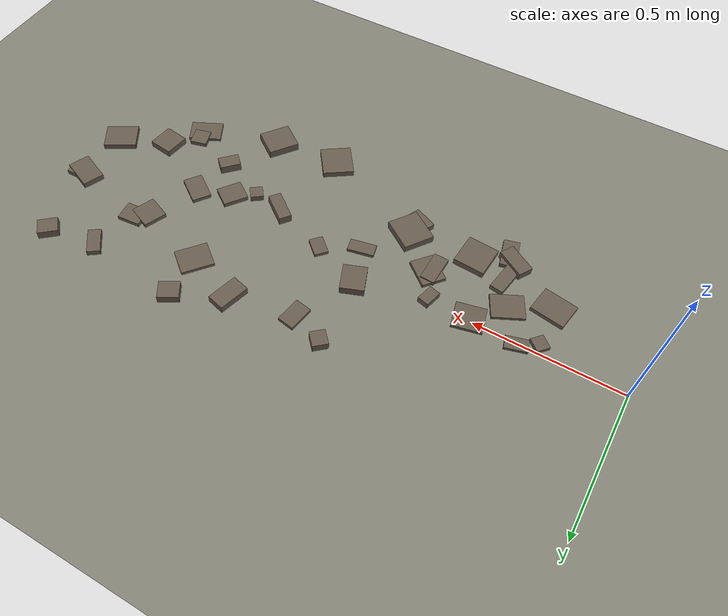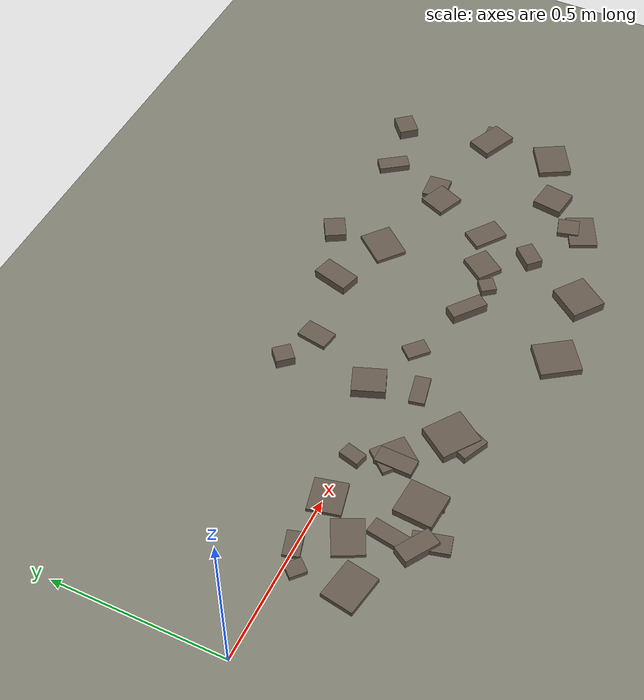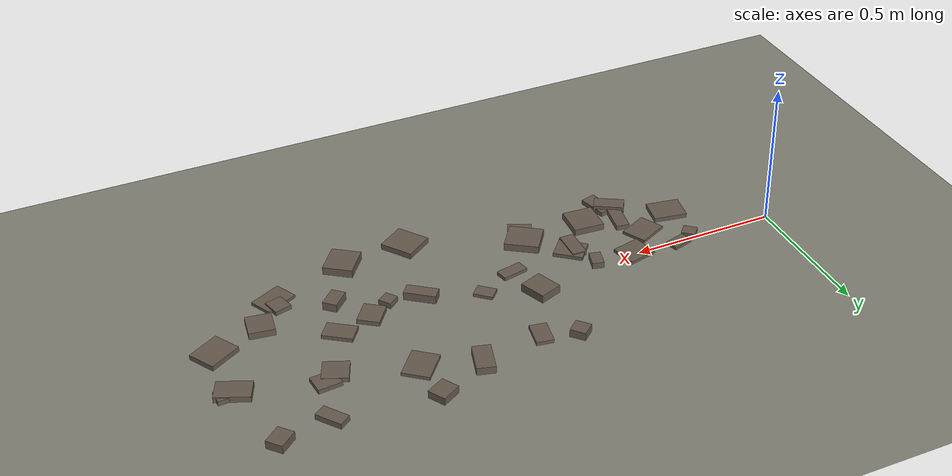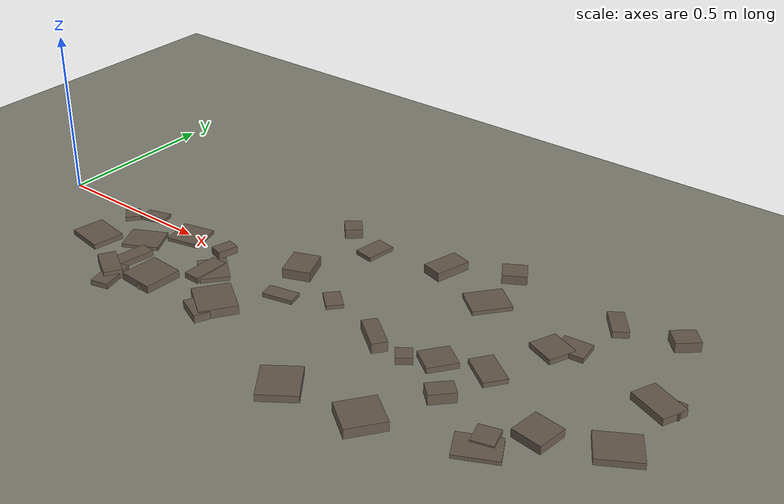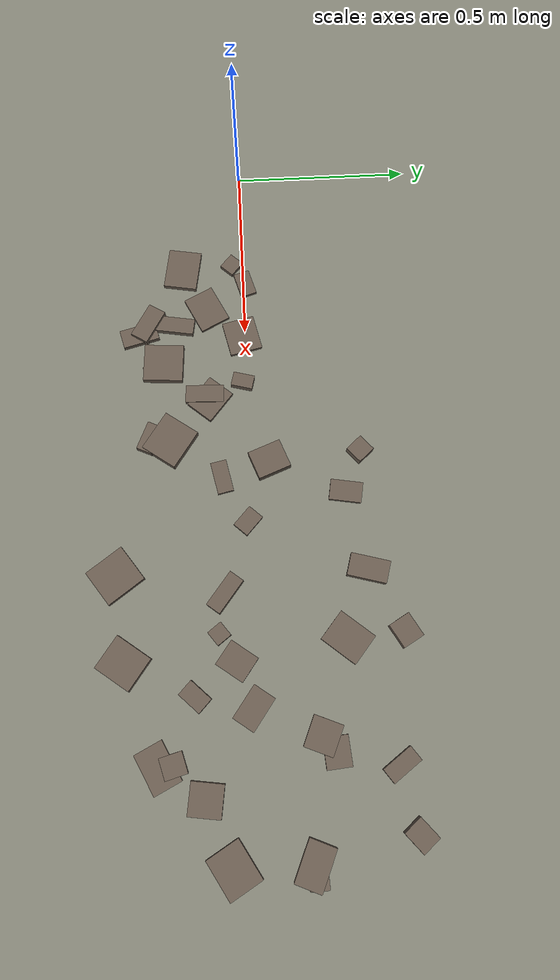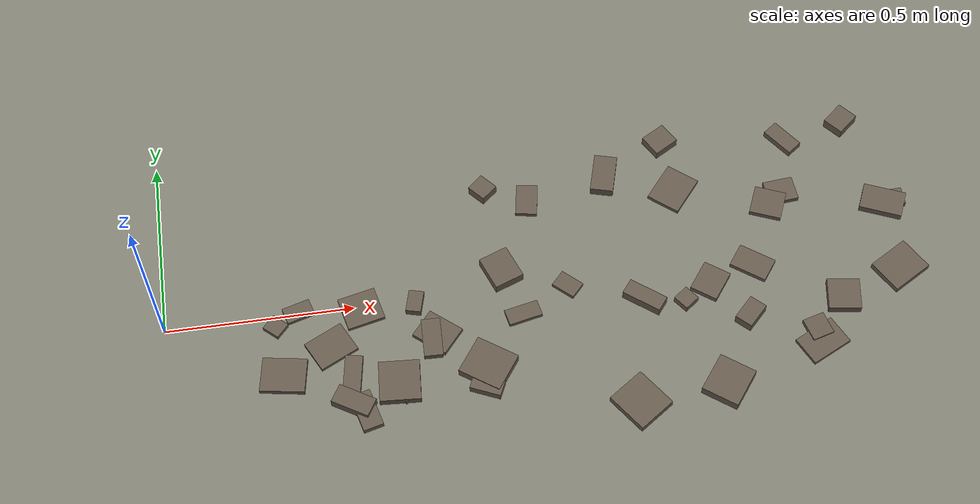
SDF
<?xml version="1.0"?>
<sdf version="1.9">
  <world name="rough">
    <physics name="1ms" type="dart">
      <max_step_size>0.001</max_step_size>
      <real_time_factor>1.0</real_time_factor>
    </physics>
    <plugin filename="gz-sim-physics-system" name="gz::sim::systems::Physics"/>
    <plugin filename="gz-sim-user-commands-system" name="gz::sim::systems::UserCommands"/>
    <plugin filename="gz-sim-scene-broadcaster-system" name="gz::sim::systems::SceneBroadcaster"/>
    <plugin filename="gz-sim-imu-system" name="gz::sim::systems::Imu"/>
    <plugin filename="gz-sim-navsat-system" name="gz::sim::systems::NavSat"/>
    <!-- the lidar and the leg ToF rays (rendering, headless with --headless-rendering) -->
    <plugin filename="gz-sim-sensors-system" name="gz::sim::systems::Sensors"><render_engine>ogre2</render_engine></plugin>
    <!-- the origin of the world on the globe, for the GNSS sensor: a park in Bucharest -->
    <spherical_coordinates>
      <surface_model>EARTH_WGS84</surface_model>
      <world_frame_orientation>ENU</world_frame_orientation>
      <latitude_deg>44.4268</latitude_deg>
      <longitude_deg>26.1025</longitude_deg>
      <elevation>80</elevation>
      <heading_deg>0</heading_deg>
    </spherical_coordinates>

    <light type="directional" name="sun">
      <cast_shadows>true</cast_shadows>
      <pose>0 0 10 0 0 0</pose>
      <diffuse>0.9 0.9 0.9 1</diffuse>
      <direction>-0.5 0.1 -0.9</direction>
    </light>

    <model name="ground">
      <static>true</static>
      <link name="link">
        <collision name="collision">
          <geometry><plane><normal>0 0 1</normal><size>50 50</size></plane></geometry>
          <surface><friction><ode><mu>1.0</mu><mu2>1.0</mu2></ode></friction></surface>
        </collision>
        <visual name="visual">
          <geometry><plane><normal>0 0 1</normal><size>50 50</size></plane></geometry>
          <material><ambient>0.5 0.5 0.45 1</ambient><diffuse>0.5 0.5 0.45 1</diffuse></material>
        </visual>
      </link>
    </model>
    <!-- 40 slabs, 1-3 cm high, 0.25-2 m ahead; generated with a fixed seed -->
    <model name="slab0">
      <static>true</static>
      <pose>0.817 -0.279 0.0115 0 0 1.148</pose>
      <link name="link">
        <collision name="c"><geometry><box><size>0.046 0.083 0.0230</size></box></geometry>
          <surface><friction><ode><mu>1.0</mu><mu2>1.0</mu2></ode></friction></surface></collision>
        <visual name="v"><geometry><box><size>0.046 0.083 0.0230</size></box></geometry>
          <material><ambient>0.4 0.35 0.3 1</ambient><diffuse>0.4 0.35 0.3 1</diffuse></material></visual>
      </link>
    </model>
    <model name="slab1">
      <static>true</static>
      <pose>0.351 0.006 0.0054 0 0 0.285</pose>
      <link name="link">
        <collision name="c"><geometry><box><size>0.075 0.046 0.0107</size></box></geometry>
          <surface><friction><ode><mu>1.0</mu><mu2>1.0</mu2></ode></friction></surface></collision>
        <visual name="v"><geometry><box><size>0.075 0.046 0.0107</size></box></geometry>
          <material><ambient>0.4 0.35 0.3 1</ambient><diffuse>0.4 0.35 0.3 1</diffuse></material></visual>
      </link>
    </model>
    <model name="slab2">
      <static>true</static>
      <pose>0.993 0.261 0.0062 0 0 2.976</pose>
      <link name="link">
        <collision name="c"><geometry><box><size>0.058 0.090 0.0125</size></box></geometry>
          <surface><friction><ode><mu>1.0</mu><mu2>1.0</mu2></ode></friction></surface></collision>
        <visual name="v"><geometry><box><size>0.058 0.090 0.0125</size></box></geometry>
          <material><ambient>0.4 0.35 0.3 1</ambient><diffuse>0.4 0.35 0.3 1</diffuse></material></visual>
      </link>
    </model>
    <model name="slab3">
      <static>true</static>
      <pose>1.260 -0.083 0.0148 0 0 0.909</pose>
      <link name="link">
        <collision name="c"><geometry><box><size>0.044 0.109 0.0295</size></box></geometry>
          <surface><friction><ode><mu>1.0</mu><mu2>1.0</mu2></ode></friction></surface></collision>
        <visual name="v"><geometry><box><size>0.044 0.109 0.0295</size></box></geometry>
          <material><ambient>0.4 0.35 0.3 1</ambient><diffuse>0.4 0.35 0.3 1</diffuse></material></visual>
      </link>
    </model>
    <model name="slab4">
      <static>true</static>
      <pose>0.502 -0.306 0.0081 0 0 1.826</pose>
      <link name="link">
        <collision name="c"><geometry><box><size>0.105 0.054 0.0162</size></box></geometry>
          <surface><friction><ode><mu>1.0</mu><mu2>1.0</mu2></ode></friction></surface></collision>
        <visual name="v"><geometry><box><size>0.105 0.054 0.0162</size></box></geometry>
          <material><ambient>0.4 0.35 0.3 1</ambient><diffuse>0.4 0.35 0.3 1</diffuse></material></visual>
      </link>
    </model>
    <model name="slab5">
      <static>true</static>
      <pose>1.368 -0.102 0.0105 0 0 0.647</pose>
      <link name="link">
        <collision name="c"><geometry><box><size>0.045 0.045 0.0210</size></box></geometry>
          <surface><friction><ode><mu>1.0</mu><mu2>1.0</mu2></ode></friction></surface></collision>
        <visual name="v"><geometry><box><size>0.045 0.045 0.0210</size></box></geometry>
          <material><ambient>0.4 0.35 0.3 1</ambient><diffuse>0.4 0.35 0.3 1</diffuse></material></visual>
      </link>
    </model>
    <model name="slab6">
      <static>true</static>
      <pose>1.441 -0.058 0.0081 0 0 0.941</pose>
      <link name="link">
        <collision name="c"><geometry><box><size>0.087 0.076 0.0163</size></box></geometry>
          <surface><friction><ode><mu>1.0</mu><mu2>1.0</mu2></ode></friction></surface></collision>
        <visual name="v"><geometry><box><size>0.087 0.076 0.0163</size></box></geometry>
          <material><ambient>0.4 0.35 0.3 1</ambient><diffuse>0.4 0.35 0.3 1</diffuse></material></visual>
      </link>
    </model>
    <model name="slab7">
      <static>true</static>
      <pose>1.640 0.159 0.0074 0 0 2.748</pose>
      <link name="link">
        <collision name="c"><geometry><box><size>0.086 0.082 0.0149</size></box></geometry>
          <surface><friction><ode><mu>1.0</mu><mu2>1.0</mu2></ode></friction></surface></collision>
        <visual name="v"><geometry><box><size>0.086 0.082 0.0149</size></box></geometry>
          <material><ambient>0.4 0.35 0.3 1</ambient><diffuse>0.4 0.35 0.3 1</diffuse></material></visual>
      </link>
    </model>
    <model name="slab8">
      <static>true</static>
      <pose>1.527 -0.170 0.0148 0 0 2.377</pose>
      <link name="link">
        <collision name="c"><geometry><box><size>0.049 0.073 0.0296</size></box></geometry>
          <surface><friction><ode><mu>1.0</mu><mu2>1.0</mu2></ode></friction></surface></collision>
        <visual name="v"><geometry><box><size>0.049 0.073 0.0296</size></box></geometry>
          <material><ambient>0.4 0.35 0.3 1</ambient><diffuse>0.4 0.35 0.3 1</diffuse></material></visual>
      </link>
    </model>
    <model name="slab9">
      <static>true</static>
      <pose>0.516 -0.009 0.0054 0 0 1.799</pose>
      <link name="link">
        <collision name="c"><geometry><box><size>0.093 0.101 0.0108</size></box></geometry>
          <surface><friction><ode><mu>1.0</mu><mu2>1.0</mu2></ode></friction></surface></collision>
        <visual name="v"><geometry><box><size>0.093 0.101 0.0108</size></box></geometry>
          <material><ambient>0.4 0.35 0.3 1</ambient><diffuse>0.4 0.35 0.3 1</diffuse></material></visual>
      </link>
    </model>
    <model name="slab10">
      <static>true</static>
      <pose>1.782 -0.149 0.0120 0 0 1.432</pose>
      <link name="link">
        <collision name="c"><geometry><box><size>0.088 0.086 0.0239</size></box></geometry>
          <surface><friction><ode><mu>1.0</mu><mu2>1.0</mu2></ode></friction></surface></collision>
        <visual name="v"><geometry><box><size>0.088 0.086 0.0239</size></box></geometry>
          <material><ambient>0.4 0.35 0.3 1</ambient><diffuse>0.4 0.35 0.3 1</diffuse></material></visual>
      </link>
    </model>
    <model name="slab11">
      <static>true</static>
      <pose>1.720 0.356 0.0097 0 0 2.203</pose>
      <link name="link">
        <collision name="c"><geometry><box><size>0.093 0.045 0.0195</size></box></geometry>
          <surface><friction><ode><mu>1.0</mu><mu2>1.0</mu2></ode></friction></surface></collision>
        <visual name="v"><geometry><box><size>0.093 0.045 0.0195</size></box></geometry>
          <material><ambient>0.4 0.35 0.3 1</ambient><diffuse>0.4 0.35 0.3 1</diffuse></material></visual>
      </link>
    </model>
    <model name="slab12">
      <static>true</static>
      <pose>1.382 0.394 0.0132 0 0 2.100</pose>
      <link name="link">
        <collision name="c"><geometry><box><size>0.063 0.071 0.0264</size></box></geometry>
          <surface><friction><ode><mu>1.0</mu><mu2>1.0</mu2></ode></friction></surface></collision>
        <visual name="v"><geometry><box><size>0.063 0.071 0.0264</size></box></geometry>
          <material><ambient>0.4 0.35 0.3 1</ambient><diffuse>0.4 0.35 0.3 1</diffuse></material></visual>
      </link>
    </model>
    <model name="slab13">
      <static>true</static>
      <pose>0.289 -0.031 0.0067 0 0 2.412</pose>
      <link name="link">
        <collision name="c"><geometry><box><size>0.049 0.045 0.0134</size></box></geometry>
          <surface><friction><ode><mu>1.0</mu><mu2>1.0</mu2></ode></friction></surface></collision>
        <visual name="v"><geometry><box><size>0.049 0.045 0.0134</size></box></geometry>
          <material><ambient>0.4 0.35 0.3 1</ambient><diffuse>0.4 0.35 0.3 1</diffuse></material></visual>
      </link>
    </model>
    <model name="slab14">
      <static>true</static>
      <pose>0.476 -0.202 0.0089 0 0 1.410</pose>
      <link name="link">
        <collision name="c"><geometry><box><size>0.110 0.046 0.0178</size></box></geometry>
          <surface><friction><ode><mu>1.0</mu><mu2>1.0</mu2></ode></friction></surface></collision>
        <visual name="v"><geometry><box><size>0.110 0.046 0.0178</size></box></geometry>
          <material><ambient>0.4 0.35 0.3 1</ambient><diffuse>0.4 0.35 0.3 1</diffuse></material></visual>
      </link>
    </model>
    <model name="slab15">
      <static>true</static>
      <pose>1.212 0.307 0.0132 0 0 1.304</pose>
      <link name="link">
        <collision name="c"><geometry><box><size>0.109 0.062 0.0264</size></box></geometry>
          <surface><friction><ode><mu>1.0</mu><mu2>1.0</mu2></ode></friction></surface></collision>
        <visual name="v"><geometry><box><size>0.109 0.062 0.0264</size></box></geometry>
          <material><ambient>0.4 0.35 0.3 1</ambient><diffuse>0.4 0.35 0.3 1</diffuse></material></visual>
      </link>
    </model>
    <model name="slab16">
      <static>true</static>
      <pose>0.878 0.307 0.0146 0 0 0.728</pose>
      <link name="link">
        <collision name="c"><geometry><box><size>0.052 0.054 0.0292</size></box></geometry>
          <surface><friction><ode><mu>1.0</mu><mu2>1.0</mu2></ode></friction></surface></collision>
        <visual name="v"><geometry><box><size>0.052 0.054 0.0292</size></box></geometry>
          <material><ambient>0.4 0.35 0.3 1</ambient><diffuse>0.4 0.35 0.3 1</diffuse></material></visual>
      </link>
    </model>
    <model name="slab17">
      <static>true</static>
      <pose>0.658 -0.012 0.0109 0 0 1.315</pose>
      <link name="link">
        <collision name="c"><geometry><box><size>0.061 0.040 0.0218</size></box></geometry>
          <surface><friction><ode><mu>1.0</mu><mu2>1.0</mu2></ode></friction></surface></collision>
        <visual name="v"><geometry><box><size>0.061 0.040 0.0218</size></box></geometry>
          <material><ambient>0.4 0.35 0.3 1</ambient><diffuse>0.4 0.35 0.3 1</diffuse></material></visual>
      </link>
    </model>
    <model name="slab18">
      <static>true</static>
      <pose>0.896 0.053 0.0145 0 0 1.939</pose>
      <link name="link">
        <collision name="c"><geometry><box><size>0.095 0.081 0.0291</size></box></geometry>
          <surface><friction><ode><mu>1.0</mu><mu2>1.0</mu2></ode></friction></surface></collision>
        <visual name="v"><geometry><box><size>0.095 0.081 0.0291</size></box></geometry>
          <material><ambient>0.4 0.35 0.3 1</ambient><diffuse>0.4 0.35 0.3 1</diffuse></material></visual>
      </link>
    </model>
    <model name="slab19">
      <static>true</static>
      <pose>1.433 -0.357 0.0140 0 0 2.505</pose>
      <link name="link">
        <collision name="c"><geometry><box><size>0.102 0.110 0.0280</size></box></geometry>
          <surface><friction><ode><mu>1.0</mu><mu2>1.0</mu2></ode></friction></surface></collision>
        <visual name="v"><geometry><box><size>0.102 0.110 0.0280</size></box></geometry>
          <material><ambient>0.4 0.35 0.3 1</ambient><diffuse>0.4 0.35 0.3 1</diffuse></material></visual>
      </link>
    </model>
    <model name="slab20">
      <static>true</static>
      <pose>0.937 -0.081 0.0060 0 0 0.211</pose>
      <link name="link">
        <collision name="c"><geometry><box><size>0.091 0.045 0.0121</size></box></geometry>
          <surface><friction><ode><mu>1.0</mu><mu2>1.0</mu2></ode></friction></surface></collision>
        <visual name="v"><geometry><box><size>0.091 0.045 0.0121</size></box></geometry>
          <material><ambient>0.4 0.35 0.3 1</ambient><diffuse>0.4 0.35 0.3 1</diffuse></material></visual>
      </link>
    </model>
    <model name="slab21">
      <static>true</static>
      <pose>0.615 -0.270 0.0084 0 0 0.475</pose>
      <link name="link">
        <collision name="c"><geometry><box><size>0.044 0.040 0.0168</size></box></geometry>
          <surface><friction><ode><mu>1.0</mu><mu2>1.0</mu2></ode></friction></surface></collision>
        <visual name="v"><geometry><box><size>0.044 0.040 0.0168</size></box></geometry>
          <material><ambient>0.4 0.35 0.3 1</ambient><diffuse>0.4 0.35 0.3 1</diffuse></material></visual>
      </link>
    </model>
    <model name="slab22">
      <static>true</static>
      <pose>0.428 -0.109 0.0053 0 0 0.466</pose>
      <link name="link">
        <collision name="c"><geometry><box><size>0.110 0.089 0.0105</size></box></geometry>
          <surface><friction><ode><mu>1.0</mu><mu2>1.0</mu2></ode></friction></surface></collision>
        <visual name="v"><geometry><box><size>0.110 0.089 0.0105</size></box></geometry>
          <material><ambient>0.4 0.35 0.3 1</ambient><diffuse>0.4 0.35 0.3 1</diffuse></material></visual>
      </link>
    </model>
    <model name="slab23">
      <static>true</static>
      <pose>0.691 -0.122 0.0086 0 0 3.118</pose>
      <link name="link">
        <collision name="c"><geometry><box><size>0.050 0.108 0.0173</size></box></geometry>
          <surface><friction><ode><mu>1.0</mu><mu2>1.0</mu2></ode></friction></surface></collision>
        <visual name="v"><geometry><box><size>0.050 0.108 0.0173</size></box></geometry>
          <material><ambient>0.4 0.35 0.3 1</ambient><diffuse>0.4 0.35 0.3 1</diffuse></material></visual>
      </link>
    </model>
    <model name="slab24">
      <static>true</static>
      <pose>1.065 -0.013 0.0059 0 0 0.831</pose>
      <link name="link">
        <collision name="c"><geometry><box><size>0.048 0.067 0.0117</size></box></geometry>
          <surface><friction><ode><mu>1.0</mu><mu2>1.0</mu2></ode></friction></surface></collision>
        <visual name="v"><geometry><box><size>0.048 0.067 0.0117</size></box></geometry>
          <material><ambient>0.4 0.35 0.3 1</ambient><diffuse>0.4 0.35 0.3 1</diffuse></material></visual>
      </link>
    </model>
    <model name="slab25">
      <static>true</static>
      <pose>1.700 -0.271 0.0052 0 0 0.460</pose>
      <link name="link">
        <collision name="c"><geometry><box><size>0.116 0.082 0.0105</size></box></geometry>
          <surface><friction><ode><mu>1.0</mu><mu2>1.0</mu2></ode></friction></surface></collision>
        <visual name="v"><geometry><box><size>0.116 0.082 0.0105</size></box></geometry>
          <material><ambient>0.4 0.35 0.3 1</ambient><diffuse>0.4 0.35 0.3 1</diffuse></material></visual>
      </link>
    </model>
    <model name="slab26">
      <static>true</static>
      <pose>1.201 -0.378 0.0103 0 0 2.186</pose>
      <link name="link">
        <collision name="c"><geometry><box><size>0.118 0.109 0.0206</size></box></geometry>
          <surface><friction><ode><mu>1.0</mu><mu2>1.0</mu2></ode></friction></surface></collision>
        <visual name="v"><geometry><box><size>0.118 0.109 0.0206</size></box></geometry>
          <material><ambient>0.4 0.35 0.3 1</ambient><diffuse>0.4 0.35 0.3 1</diffuse></material></visual>
      </link>
    </model>
    <model name="slab27">
      <static>true</static>
      <pose>0.707 -0.107 0.0067 0 0 2.446</pose>
      <link name="link">
        <collision name="c"><geometry><box><size>0.102 0.083 0.0133</size></box></geometry>
          <surface><friction><ode><mu>1.0</mu><mu2>1.0</mu2></ode></friction></surface></collision>
        <visual name="v"><geometry><box><size>0.102 0.083 0.0133</size></box></geometry>
          <material><ambient>0.4 0.35 0.3 1</ambient><diffuse>0.4 0.35 0.3 1</diffuse></material></visual>
      </link>
    </model>
    <model name="slab28">
      <static>true</static>
      <pose>0.827 -0.222 0.0131 0 0 2.531</pose>
      <link name="link">
        <collision name="c"><geometry><box><size>0.119 0.108 0.0262</size></box></geometry>
          <surface><friction><ode><mu>1.0</mu><mu2>1.0</mu2></ode></friction></surface></collision>
        <visual name="v"><geometry><box><size>0.119 0.108 0.0262</size></box></geometry>
          <material><ambient>0.4 0.35 0.3 1</ambient><diffuse>0.4 0.35 0.3 1</diffuse></material></visual>
      </link>
    </model>
    <model name="slab29">
      <static>true</static>
      <pose>1.682 0.192 0.0073 0 0 0.091</pose>
      <link name="link">
        <collision name="c"><geometry><box><size>0.081 0.068 0.0145</size></box></geometry>
          <surface><friction><ode><mu>1.0</mu><mu2>1.0</mu2></ode></friction></surface></collision>
        <visual name="v"><geometry><box><size>0.081 0.068 0.0145</size></box></geometry>
          <material><ambient>0.4 0.35 0.3 1</ambient><diffuse>0.4 0.35 0.3 1</diffuse></material></visual>
      </link>
    </model>
    <model name="slab30">
      <static>true</static>
      <pose>0.299 -0.176 0.0076 0 0 1.404</pose>
      <link name="link">
        <collision name="c"><geometry><box><size>0.095 0.117 0.0152</size></box></geometry>
          <surface><friction><ode><mu>1.0</mu><mu2>1.0</mu2></ode></friction></surface></collision>
        <visual name="v"><geometry><box><size>0.095 0.117 0.0152</size></box></geometry>
          <material><ambient>0.4 0.35 0.3 1</ambient><diffuse>0.4 0.35 0.3 1</diffuse></material></visual>
      </link>
    </model>
    <model name="slab31">
      <static>true</static>
      <pose>1.890 0.390 0.0146 0 0 0.712</pose>
      <link name="link">
        <collision name="c"><geometry><box><size>0.069 0.058 0.0291</size></box></geometry>
          <surface><friction><ode><mu>1.0</mu><mu2>1.0</mu2></ode></friction></surface></collision>
        <visual name="v"><geometry><box><size>0.069 0.058 0.0291</size></box></geometry>
          <material><ambient>0.4 0.35 0.3 1</ambient><diffuse>0.4 0.35 0.3 1</diffuse></material></visual>
      </link>
    </model>
    <model name="slab32">
      <static>true</static>
      <pose>0.594 -0.237 0.0112 0 0 1.506</pose>
      <link name="link">
        <collision name="c"><geometry><box><size>0.112 0.107 0.0225</size></box></geometry>
          <surface><friction><ode><mu>1.0</mu><mu2>1.0</mu2></ode></friction></surface></collision>
        <visual name="v"><geometry><box><size>0.112 0.107 0.0225</size></box></geometry>
          <material><ambient>0.4 0.35 0.3 1</ambient><diffuse>0.4 0.35 0.3 1</diffuse></material></visual>
      </link>
    </model>
    <model name="slab33">
      <static>true</static>
      <pose>1.393 0.240 0.0058 0 0 2.456</pose>
      <link name="link">
        <collision name="c"><geometry><box><size>0.093 0.113 0.0117</size></box></geometry>
          <surface><friction><ode><mu>1.0</mu><mu2>1.0</mu2></ode></friction></surface></collision>
        <visual name="v"><geometry><box><size>0.093 0.113 0.0117</size></box></geometry>
          <material><ambient>0.4 0.35 0.3 1</ambient><diffuse>0.4 0.35 0.3 1</diffuse></material></visual>
      </link>
    </model>
    <model name="slab34">
      <static>true</static>
      <pose>1.563 -0.018 0.0068 0 0 2.515</pose>
      <link name="link">
        <collision name="c"><geometry><box><size>0.103 0.067 0.0136</size></box></geometry>
          <surface><friction><ode><mu>1.0</mu><mu2>1.0</mu2></ode></friction></surface></collision>
        <visual name="v"><geometry><box><size>0.103 0.067 0.0136</size></box></geometry>
          <material><ambient>0.4 0.35 0.3 1</ambient><diffuse>0.4 0.35 0.3 1</diffuse></material></visual>
      </link>
    </model>
    <model name="slab35">
      <static>true</static>
      <pose>1.950 -0.083 0.0090 0 0 0.534</pose>
      <link name="link">
        <collision name="c"><geometry><box><size>0.116 0.098 0.0180</size></box></geometry>
          <surface><friction><ode><mu>1.0</mu><mu2>1.0</mu2></ode></friction></surface></collision>
        <visual name="v"><geometry><box><size>0.116 0.098 0.0180</size></box></geometry>
          <material><ambient>0.4 0.35 0.3 1</ambient><diffuse>0.4 0.35 0.3 1</diffuse></material></visual>
      </link>
    </model>
    <model name="slab36">
      <static>true</static>
      <pose>0.472 -0.279 0.0140 0 0 2.595</pose>
      <link name="link">
        <collision name="c"><geometry><box><size>0.105 0.052 0.0281</size></box></geometry>
          <surface><friction><ode><mu>1.0</mu><mu2>1.0</mu2></ode></friction></surface></collision>
        <visual name="v"><geometry><box><size>0.105 0.052 0.0281</size></box></geometry>
          <material><ambient>0.4 0.35 0.3 1</ambient><diffuse>0.4 0.35 0.3 1</diffuse></material></visual>
      </link>
    </model>
    <model name="slab37">
      <static>true</static>
      <pose>1.966 0.126 0.0085 0 0 0.045</pose>
      <link name="link">
        <collision name="c"><geometry><box><size>0.084 0.050 0.0170</size></box></geometry>
          <surface><friction><ode><mu>1.0</mu><mu2>1.0</mu2></ode></friction></surface></collision>
        <visual name="v"><geometry><box><size>0.084 0.050 0.0170</size></box></geometry>
          <material><ambient>0.4 0.35 0.3 1</ambient><diffuse>0.4 0.35 0.3 1</diffuse></material></visual>
      </link>
    </model>
    <model name="slab38">
      <static>true</static>
      <pose>1.949 0.120 0.0103 0 0 2.737</pose>
      <link name="link">
        <collision name="c"><geometry><box><size>0.115 0.075 0.0205</size></box></geometry>
          <surface><friction><ode><mu>1.0</mu><mu2>1.0</mu2></ode></friction></surface></collision>
        <visual name="v"><geometry><box><size>0.115 0.075 0.0205</size></box></geometry>
          <material><ambient>0.4 0.35 0.3 1</ambient><diffuse>0.4 0.35 0.3 1</diffuse></material></visual>
      </link>
    </model>
    <model name="slab39">
      <static>true</static>
      <pose>1.696 -0.231 0.0075 0 0 1.841</pose>
      <link name="link">
        <collision name="c"><geometry><box><size>0.063 0.059 0.0150</size></box></geometry>
          <surface><friction><ode><mu>1.0</mu><mu2>1.0</mu2></ode></friction></surface></collision>
        <visual name="v"><geometry><box><size>0.063 0.059 0.0150</size></box></geometry>
          <material><ambient>0.4 0.35 0.3 1</ambient><diffuse>0.4 0.35 0.3 1</diffuse></material></visual>
      </link>
    </model>
  </world>
</sdf>
